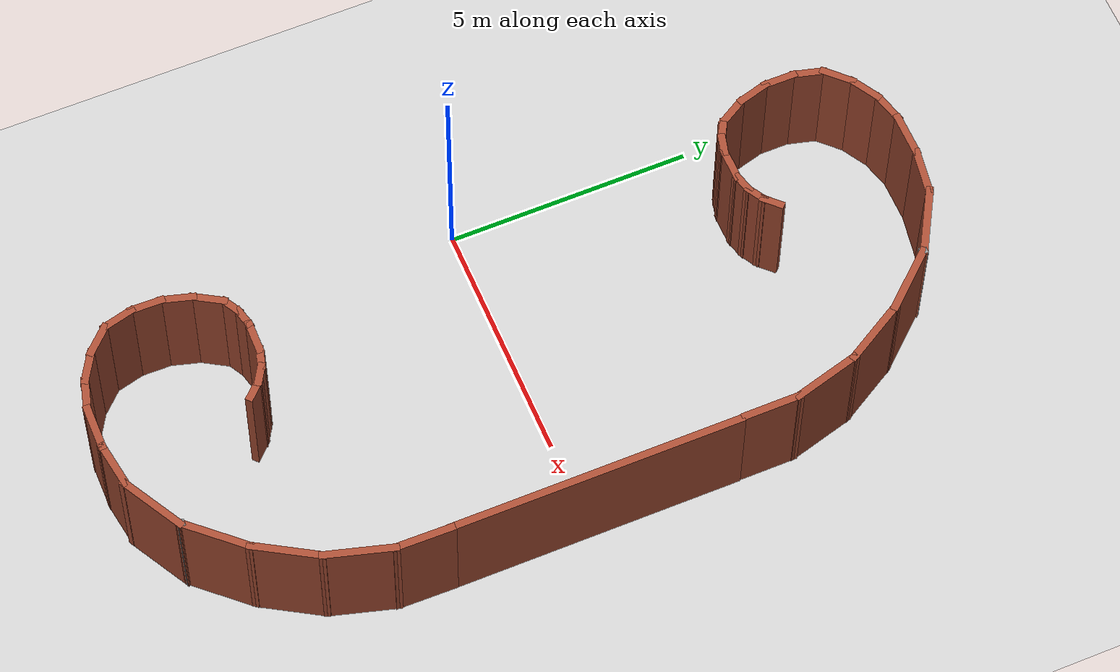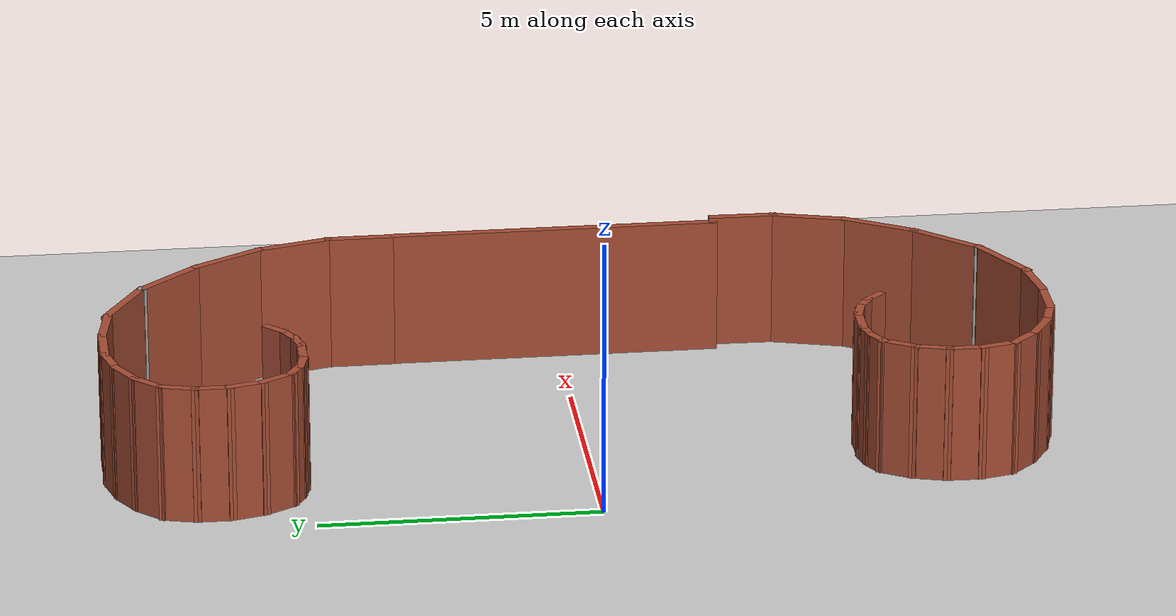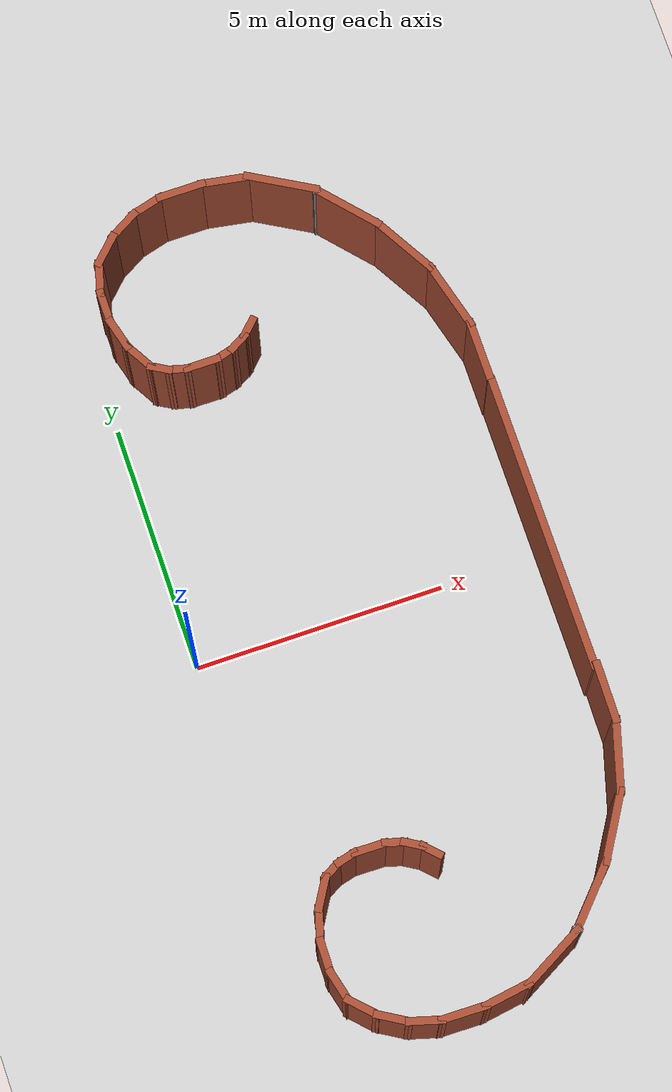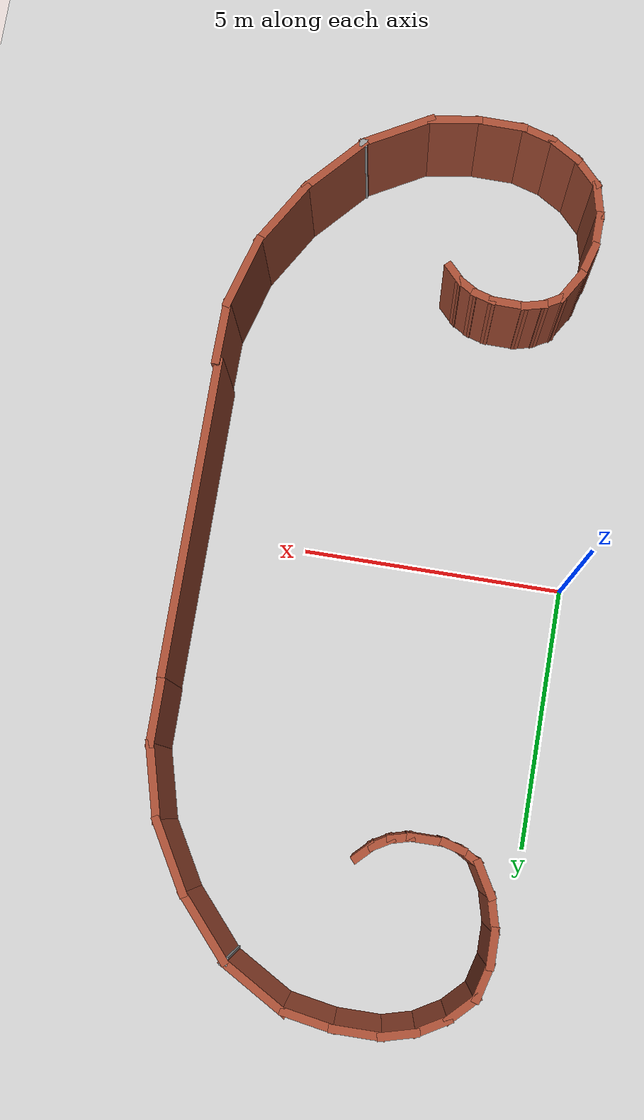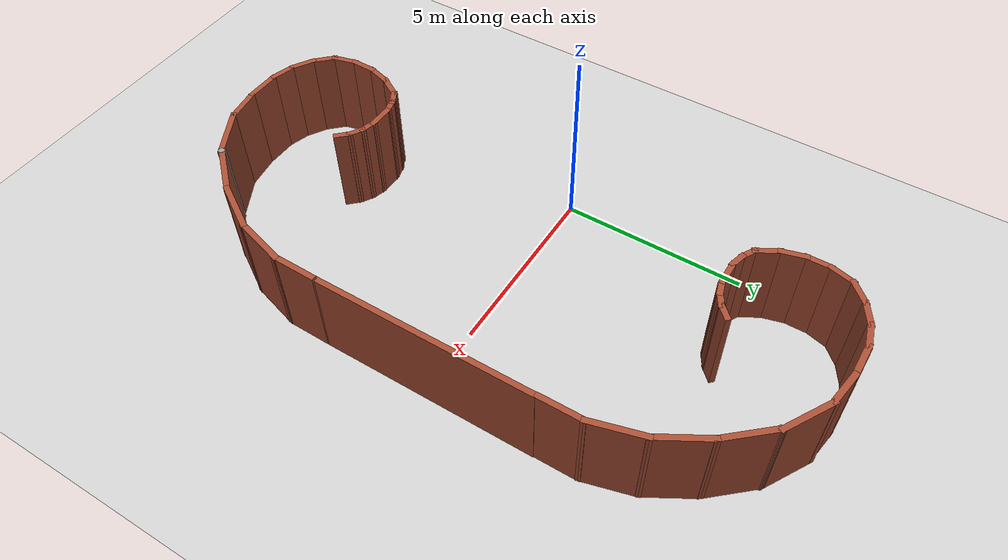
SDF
<sdf version="1.6">
 <world name="default">
  <light name="sun" type="directional">
   <pose>0 0 10 0 -0 0</pose>
   <diffuse>0.8 0.8 0.8 1</diffuse>
   <specular>0.2 0.2 0.2 1</specular>
   <attenuation>
    <range>1000</range>
    <constant>0.9</constant>
    <linear>0.01</linear>
    <quadratic>0.001</quadratic>
   </attenuation>
   <direction>-0.5 0.1 -0.9</direction>
  </light>
  <model name="ground_plane">
   <static>1</static>
   <link name="link">
    <collision name="collision">
     <geometry><plane><normal>0 0 1</normal><size>100 100</size></plane></geometry>
     <surface><friction><ode><mu>100</mu><mu2>50</mu2></ode></friction></surface>
    </collision>
    <visual name="visual">
     <cast_shadows>0</cast_shadows>
     <geometry><plane><normal>0 0 1</normal><size>100 100</size></plane></geometry>
     <material>
      <script><uri>file://media/materials/scripts/gazebo.material</uri><name>Gazebo/Grey</name></script>
     </material>
    </visual>
   </link>
  </model>
  <gravity>0 0 -9.8</gravity>
  <magnetic_field>6e-06 2.3e-05 -4.2e-05</magnetic_field>
  <atmosphere type="adiabatic"/>
  <physics name="default_physics" default="0" type="ode">
   <max_step_size>0.001</max_step_size>
   <real_time_factor>1</real_time_factor>
   <real_time_update_rate>1000</real_time_update_rate>
  </physics>
  <scene><ambient>0.4 0.4 0.4 1</ambient><background>0.7 0.7 0.7 1</background><shadows>1</shadows></scene>
  <audio><device>default</device></audio>
  <spherical_coordinates>
   <surface_model>EARTH_WGS84</surface_model>
   <latitude_deg>0</latitude_deg>
   <longitude_deg>0</longitude_deg>
   <elevation>0</elevation>
   <heading_deg>0</heading_deg>
  </spherical_coordinates>
  <model name="half_c_severe">
   <pose>3.72475 5.80753 0 0 -0 1.57386</pose>
   <link name="Wall_10">
    <collision name="Wall_10_Collision">
     <geometry><box><size>0.75 0.15 2.5</size></box></geometry>
     <pose>0 0 1.25 0 -0 0</pose>
    </collision>
    <visual name="Wall_10_Visual">
     <pose>0 0 1.25 0 -0 0</pose>
     <geometry><box><size>0.75 0.15 2.5</size></box></geometry>
     <material>
      <script><uri>file://media/materials/scripts/gazebo.material</uri><name>Gazebo/Bricks</name></script>
      <ambient>1 1 1 1</ambient>
     </material>
     <meta><layer>0</layer></meta>
    </visual>
    <pose>2.62529 1.86 0 0 -0 1.8326</pose>
   </link>
   <link name="Wall_11">
    <collision name="Wall_11_Collision">
     <geometry><box><size>0.75 0.15 2.5</size></box></geometry>
     <pose>0 0 1.25 0 -0 0</pose>
    </collision>
    <visual name="Wall_11_Visual">
     <pose>0 0 1.25 0 -0 0</pose>
     <geometry><box><size>0.75 0.15 2.5</size></box></geometry>
     <material>
      <script><uri>file://media/materials/scripts/gazebo.material</uri><name>Gazebo/Bricks</name></script>
      <ambient>1 1 1 1</ambient>
     </material>
     <meta><layer>0</layer></meta>
    </visual>
    <pose>2.39764 2.40959 0 0 -0 2.0944</pose>
   </link>
   <link name="Wall_12">
    <collision name="Wall_12_Collision">
     <geometry><box><size>0.75 0.15 2.5</size></box></geometry>
     <pose>0 0 1.25 0 -0 0</pose>
    </collision>
    <visual name="Wall_12_Visual">
     <pose>0 0 1.25 0 -0 0</pose>
     <geometry><box><size>0.75 0.15 2.5</size></box></geometry>
     <material>
      <script><uri>file://media/materials/scripts/gazebo.material</uri><name>Gazebo/Bricks</name></script>
      <ambient>1 1 1 1</ambient>
     </material>
     <meta><layer>0</layer></meta>
    </visual>
    <pose>2.03551 2.88152 0 0 -0 2.35619</pose>
   </link>
   <link name="Wall_13">
    <collision name="Wall_13_Collision">
     <geometry><box><size>0.75 0.15 2.5</size></box></geometry>
     <pose>0 0 1.25 0 -0 0</pose>
    </collision>
    <visual name="Wall_13_Visual">
     <pose>0 0 1.25 0 -0 0</pose>
     <geometry><box><size>0.75 0.15 2.5</size></box></geometry>
     <material>
      <script><uri>file://media/materials/scripts/gazebo.material</uri><name>Gazebo/Bricks</name></script>
      <ambient>1 1 1 1</ambient>
     </material>
     <meta><layer>0</layer></meta>
    </visual>
    <pose>1.5336 3.1713 0 0 -0 2.87979</pose>
   </link>
   <link name="Wall_14">
    <collision name="Wall_14_Collision">
     <geometry><box><size>0.75 0.15 2.5</size></box></geometry>
     <pose>0 0 1.25 0 -0 0</pose>
    </collision>
    <visual name="Wall_14_Visual">
     <pose>0 0 1.25 0 -0 0</pose>
     <geometry><box><size>0.75 0.15 2.5</size></box></geometry>
     <material>
      <script><uri>file://media/materials/scripts/gazebo.material</uri><name>Gazebo/Bricks</name></script>
      <ambient>1 1 1 1</ambient>
     </material>
     <meta><layer>0</layer></meta>
    </visual>
    <pose>0.943823 3.24895 0 0 -0 3.14159</pose>
   </link>
   <link name="Wall_15">
    <collision name="Wall_15_Collision">
     <geometry><box><size>0.75 0.15 2.5</size></box></geometry>
     <pose>0 0 1.25 0 -0 0</pose>
    </collision>
    <visual name="Wall_15_Visual">
     <pose>0 0 1.25 0 -0 0</pose>
     <geometry><box><size>0.75 0.15 2.5</size></box></geometry>
     <material>
      <script><uri>file://media/materials/scripts/gazebo.material</uri><name>Gazebo/Bricks</name></script>
      <ambient>1 1 1 1</ambient>
     </material>
     <meta><layer>0</layer></meta>
    </visual>
    <pose>0.354046 3.1713 0 0 -0 -2.87979</pose>
   </link>
   <link name="Wall_16">
    <collision name="Wall_16_Collision">
     <geometry><box><size>0.75 0.15 2.5</size></box></geometry>
     <pose>0 0 1.25 0 -0 0</pose>
    </collision>
    <visual name="Wall_16_Visual">
     <pose>0 0 1.25 0 -0 0</pose>
     <geometry><box><size>0.75 0.15 2.5</size></box></geometry>
     <material>
      <script><uri>file://media/materials/scripts/gazebo.material</uri><name>Gazebo/Bricks</name></script>
      <ambient>1 1 1 1</ambient>
     </material>
     <meta><layer>0</layer></meta>
    </visual>
    <pose>-0.19554 2.94366 0 0 -0 -2.61799</pose>
   </link>
   <link name="Wall_17">
    <collision name="Wall_17_Collision">
     <geometry><box><size>0.5 0.15 2.5</size></box></geometry>
     <pose>0 0 1.25 0 -0 0</pose>
    </collision>
    <visual name="Wall_17_Visual">
     <pose>0 0 1.25 0 -0 0</pose>
     <geometry><box><size>0.5 0.15 2.5</size></box></geometry>
     <material>
      <script><uri>file://media/materials/scripts/gazebo.material</uri><name>Gazebo/Bricks</name></script>
      <ambient>1 1 1 1</ambient>
     </material>
     <meta><layer>0</layer></meta>
    </visual>
    <pose>-0.542847 2.6421 0 0 -0 -2.0944</pose>
   </link>
   <link name="Wall_18">
    <collision name="Wall_18_Collision">
     <geometry><box><size>0.5 0.15 2.5</size></box></geometry>
     <pose>0 0 1.25 0 -0 0</pose>
    </collision>
    <visual name="Wall_18_Visual">
     <pose>0 0 1.25 0 -0 0</pose>
     <geometry><box><size>0.5 0.15 2.5</size></box></geometry>
     <material>
      <script><uri>file://media/materials/scripts/gazebo.material</uri><name>Gazebo/Bricks</name></script>
      <ambient>1 1 1 1</ambient>
     </material>
     <meta><layer>0</layer></meta>
    </visual>
    <pose>-0.675641 2.32151 0 0 -0 -1.8326</pose>
   </link>
   <link name="Wall_19">
    <collision name="Wall_19_Collision">
     <geometry><box><size>0.75 0.15 2.5</size></box></geometry>
     <pose>0 0 1.25 0 -0 0</pose>
    </collision>
    <visual name="Wall_19_Visual">
     <pose>0 0 1.25 0 -0 0</pose>
     <geometry><box><size>0.75 0.15 2.5</size></box></geometry>
     <material>
      <script><uri>file://media/materials/scripts/gazebo.material</uri><name>Gazebo/Bricks</name></script>
      <ambient>1 1 1 1</ambient>
     </material>
     <meta><layer>0</layer></meta>
    </visual>
    <pose>-0.720934 1.85248 0 0 -0 -1.5708</pose>
   </link>
   <link name="Wall_2">
    <collision name="Wall_2_Collision">
     <geometry><box><size>1.25 0.15 2.5</size></box></geometry>
     <pose>0 0 1.25 0 -0 0</pose>
    </collision>
    <visual name="Wall_2_Visual">
     <pose>0 0 1.25 0 -0 0</pose>
     <geometry><box><size>1.25 0.15 2.5</size></box></geometry>
     <material>
      <script><uri>file://media/materials/scripts/gazebo.material</uri><name>Gazebo/Bricks</name></script>
      <ambient>1 1 1 1</ambient>
     </material>
     <meta><layer>0</layer></meta>
    </visual>
    <pose>-2.16979 -3.24895 0 0 -0 0</pose>
   </link>
   <link name="Wall_20">
    <collision name="Wall_20_Collision">
     <geometry><box><size>0.5 0.15 2.5</size></box></geometry>
     <pose>0 0 1.25 0 -0 0</pose>
    </collision>
    <visual name="Wall_20_Visual">
     <pose>0 0 1.25 0 -0 0</pose>
     <geometry><box><size>0.5 0.15 2.5</size></box></geometry>
     <material>
      <script><uri>file://media/materials/scripts/gazebo.material</uri><name>Gazebo/Bricks</name></script>
      <ambient>1 1 1 1</ambient>
     </material>
     <meta><layer>0</layer></meta>
    </visual>
    <pose>-0.675641 1.38344 0 0 -0 -1.309</pose>
   </link>
   <link name="Wall_21">
    <collision name="Wall_21_Collision">
     <geometry><box><size>0.5 0.15 2.5</size></box></geometry>
     <pose>0 0 1.25 0 -0 0</pose>
    </collision>
    <visual name="Wall_21_Visual">
     <pose>0 0 1.25 0 -0 0</pose>
     <geometry><box><size>0.5 0.15 2.5</size></box></geometry>
     <material>
      <script><uri>file://media/materials/scripts/gazebo.material</uri><name>Gazebo/Bricks</name></script>
      <ambient>1 1 1 1</ambient>
     </material>
     <meta><layer>0</layer></meta>
    </visual>
    <pose>-0.542847 1.06285 0 0 -0 -1.0472</pose>
   </link>
   <link name="Wall_22">
    <collision name="Wall_22_Collision">
     <geometry><box><size>0.5 0.15 2.5</size></box></geometry>
     <pose>0 0 1.25 0 -0 0</pose>
    </collision>
    <visual name="Wall_22_Visual">
     <pose>0 0 1.25 0 -0 0</pose>
     <geometry><box><size>0.5 0.15 2.5</size></box></geometry>
     <material>
      <script><uri>file://media/materials/scripts/gazebo.material</uri><name>Gazebo/Bricks</name></script>
      <ambient>1 1 1 1</ambient>
     </material>
     <meta><layer>0</layer></meta>
    </visual>
    <pose>-0.331604 0.787548 0 0 -0 -0.785398</pose>
   </link>
   <link name="Wall_3">
    <collision name="Wall_3_Collision">
     <geometry><box><size>1.5 0.15 2.5</size></box></geometry>
     <pose>0 0 1.25 0 -0 0</pose>
    </collision>
    <visual name="Wall_3_Visual">
     <pose>0 0 1.25 0 -0 0</pose>
     <geometry><box><size>1.5 0.15 2.5</size></box></geometry>
     <material>
      <script><uri>file://media/materials/scripts/gazebo.material</uri><name>Gazebo/Bricks</name></script>
      <ambient>1 1 1 1</ambient>
     </material>
     <meta><layer>0</layer></meta>
    </visual>
    <pose>-0.96779 -3.07425 0 0 -0 0.261799</pose>
   </link>
   <link name="Wall_4">
    <collision name="Wall_4_Collision">
     <geometry><box><size>1.5 0.15 2.5</size></box></geometry>
     <pose>0 0 1.25 0 -0 0</pose>
    </collision>
    <visual name="Wall_4_Visual">
     <pose>0 0 1.25 0 -0 0</pose>
     <geometry><box><size>1.5 0.15 2.5</size></box></geometry>
     <material>
      <script><uri>file://media/materials/scripts/gazebo.material</uri><name>Gazebo/Bricks</name></script>
      <ambient>1 1 1 1</ambient>
     </material>
     <meta><layer>0</layer></meta>
    </visual>
    <pose>0.268777 -2.56204 0 0 -0 0.523599</pose>
   </link>
   <link name="Wall_5">
    <collision name="Wall_5_Collision">
     <geometry><box><size>1.51511 0.15 2.5</size></box></geometry>
     <pose>0 0 1.25 0 -0 0</pose>
    </collision>
    <visual name="Wall_5_Visual">
     <pose>0 0 1.25 0 -0 0</pose>
     <geometry><box><size>1.51511 0.15 2.5</size></box></geometry>
     <material>
      <script><uri>file://media/materials/scripts/gazebo.material</uri><name>Gazebo/Bricks</name></script>
      <ambient>1 1 1 1</ambient>
     </material>
     <meta><layer>0</layer></meta>
    </visual>
    <pose>1.36562 -1.77348 0 0 -0 0.721939</pose>
   </link>
   <link name="Wall_6">
    <collision name="Wall_6_Collision">
     <geometry><box><size>0.15 0.15 2.5</size></box></geometry>
     <pose>0 0 1.25 0 -0 0</pose>
    </collision>
    <visual name="Wall_6_Visual">
     <pose>0 0 1.25 0 -0 0</pose>
     <geometry><box><size>0.15 0.15 2.5</size></box></geometry>
     <material>
      <script><uri>file://media/materials/scripts/gazebo.material</uri><name>Gazebo/Grey</name></script>
      <ambient>1 1 1 1</ambient>
     </material>
     <meta><layer>0</layer></meta>
    </visual>
    <pose>1.8779 -1.32242 0 0 -0 0</pose>
   </link>
   <link name="Wall_7">
    <collision name="Wall_7_Collision">
     <geometry><box><size>1.5 0.15 2.5</size></box></geometry>
     <pose>0 0 1.25 0 -0 0</pose>
    </collision>
    <visual name="Wall_7_Visual">
     <pose>0 0 1.25 0 -0 0</pose>
     <geometry><box><size>1.5 0.15 2.5</size></box></geometry>
     <material>
      <script><uri>file://media/materials/scripts/gazebo.material</uri><name>Gazebo/Bricks</name></script>
      <ambient>1 1 1 1</ambient>
     </material>
     <meta><layer>0</layer></meta>
    </visual>
    <pose>2.23289 -0.737852 0 0 -0 1.0472</pose>
   </link>
   <link name="Wall_8">
    <collision name="Wall_8_Collision">
     <geometry><box><size>1.0363 0.15 2.5</size></box></geometry>
     <pose>0 0 1.25 0 -0 0</pose>
    </collision>
    <visual name="Wall_8_Visual">
     <pose>0 0 1.25 0 -0 0</pose>
     <geometry><box><size>1.0363 0.15 2.5</size></box></geometry>
     <material>
      <script><uri>file://media/materials/scripts/gazebo.material</uri><name>Gazebo/Bricks</name></script>
      <ambient>1 1 1 1</ambient>
     </material>
     <meta><layer>0</layer></meta>
    </visual>
    <pose>2.62792 0.283469 0 0 -0 1.40069</pose>
   </link>
   <link name="Wall_9">
    <collision name="Wall_9_Collision">
     <geometry><box><size>1 0.15 2.5</size></box></geometry>
     <pose>0 0 1.25 0 -0 0</pose>
    </collision>
    <visual name="Wall_9_Visual">
     <pose>0 0 1.25 0 -0 0</pose>
     <geometry><box><size>1 0.15 2.5</size></box></geometry>
     <material>
      <script><uri>file://media/materials/scripts/gazebo.material</uri><name>Gazebo/Bricks</name></script>
      <ambient>1 1 1 1</ambient>
     </material>
     <meta><layer>0</layer></meta>
    </visual>
    <pose>2.70293 1.14522 0 0 -0 1.5708</pose>
   </link>
   <static>1</static>
  </model>
  <model name="half_c_severe_clone">
   <pose>3.7434 -5.5229 2.58183 3.13976 -3e-05 -1.58682</pose>
   <link name="Wall_10">
    <collision name="Wall_10_Collision">
     <geometry><box><size>0.75 0.15 2.5</size></box></geometry>
     <pose>0 0 1.25 0 -0 0</pose>
    </collision>
    <visual name="Wall_10_Visual">
     <pose>0 0 1.25 0 -0 0</pose>
     <geometry><box><size>0.75 0.15 2.5</size></box></geometry>
     <material>
      <script><uri>file://media/materials/scripts/gazebo.material</uri><name>Gazebo/Bricks</name></script>
      <ambient>1 1 1 1</ambient>
     </material>
     <meta><layer>0</layer></meta>
    </visual>
    <pose>2.62529 1.86 0 0 -0 1.8326</pose>
   </link>
   <link name="Wall_11">
    <collision name="Wall_11_Collision">
     <geometry><box><size>0.75 0.15 2.5</size></box></geometry>
     <pose>0 0 1.25 0 -0 0</pose>
    </collision>
    <visual name="Wall_11_Visual">
     <pose>0 0 1.25 0 -0 0</pose>
     <geometry><box><size>0.75 0.15 2.5</size></box></geometry>
     <material>
      <script><uri>file://media/materials/scripts/gazebo.material</uri><name>Gazebo/Bricks</name></script>
      <ambient>1 1 1 1</ambient>
     </material>
     <meta><layer>0</layer></meta>
    </visual>
    <pose>2.39764 2.40959 0 0 -0 2.0944</pose>
   </link>
   <link name="Wall_12">
    <collision name="Wall_12_Collision">
     <geometry><box><size>0.75 0.15 2.5</size></box></geometry>
     <pose>0 0 1.25 0 -0 0</pose>
    </collision>
    <visual name="Wall_12_Visual">
     <pose>0 0 1.25 0 -0 0</pose>
     <geometry><box><size>0.75 0.15 2.5</size></box></geometry>
     <material>
      <script><uri>file://media/materials/scripts/gazebo.material</uri><name>Gazebo/Bricks</name></script>
      <ambient>1 1 1 1</ambient>
     </material>
     <meta><layer>0</layer></meta>
    </visual>
    <pose>2.03551 2.88152 0 0 -0 2.35619</pose>
   </link>
   <link name="Wall_13">
    <collision name="Wall_13_Collision">
     <geometry><box><size>0.75 0.15 2.5</size></box></geometry>
     <pose>0 0 1.25 0 -0 0</pose>
    </collision>
    <visual name="Wall_13_Visual">
     <pose>0 0 1.25 0 -0 0</pose>
     <geometry><box><size>0.75 0.15 2.5</size></box></geometry>
     <material>
      <script><uri>file://media/materials/scripts/gazebo.material</uri><name>Gazebo/Bricks</name></script>
      <ambient>1 1 1 1</ambient>
     </material>
     <meta><layer>0</layer></meta>
    </visual>
    <pose>1.5336 3.1713 0 0 -0 2.87979</pose>
   </link>
   <link name="Wall_14">
    <collision name="Wall_14_Collision">
     <geometry><box><size>0.75 0.15 2.5</size></box></geometry>
     <pose>0 0 1.25 0 -0 0</pose>
    </collision>
    <visual name="Wall_14_Visual">
     <pose>0 0 1.25 0 -0 0</pose>
     <geometry><box><size>0.75 0.15 2.5</size></box></geometry>
     <material>
      <script><uri>file://media/materials/scripts/gazebo.material</uri><name>Gazebo/Bricks</name></script>
      <ambient>1 1 1 1</ambient>
     </material>
     <meta><layer>0</layer></meta>
    </visual>
    <pose>0.943823 3.24895 0 0 -0 3.14159</pose>
   </link>
   <link name="Wall_15">
    <collision name="Wall_15_Collision">
     <geometry><box><size>0.75 0.15 2.5</size></box></geometry>
     <pose>0 0 1.25 0 -0 0</pose>
    </collision>
    <visual name="Wall_15_Visual">
     <pose>0 0 1.25 0 -0 0</pose>
     <geometry><box><size>0.75 0.15 2.5</size></box></geometry>
     <material>
      <script><uri>file://media/materials/scripts/gazebo.material</uri><name>Gazebo/Bricks</name></script>
      <ambient>1 1 1 1</ambient>
     </material>
     <meta><layer>0</layer></meta>
    </visual>
    <pose>0.354046 3.1713 0 0 -0 -2.87979</pose>
   </link>
   <link name="Wall_16">
    <collision name="Wall_16_Collision">
     <geometry><box><size>0.75 0.15 2.5</size></box></geometry>
     <pose>0 0 1.25 0 -0 0</pose>
    </collision>
    <visual name="Wall_16_Visual">
     <pose>0 0 1.25 0 -0 0</pose>
     <geometry><box><size>0.75 0.15 2.5</size></box></geometry>
     <material>
      <script><uri>file://media/materials/scripts/gazebo.material</uri><name>Gazebo/Bricks</name></script>
      <ambient>1 1 1 1</ambient>
     </material>
     <meta><layer>0</layer></meta>
    </visual>
    <pose>-0.19554 2.94366 0 0 -0 -2.61799</pose>
   </link>
   <link name="Wall_17">
    <collision name="Wall_17_Collision">
     <geometry><box><size>0.5 0.15 2.5</size></box></geometry>
     <pose>0 0 1.25 0 -0 0</pose>
    </collision>
    <visual name="Wall_17_Visual">
     <pose>0 0 1.25 0 -0 0</pose>
     <geometry><box><size>0.5 0.15 2.5</size></box></geometry>
     <material>
      <script><uri>file://media/materials/scripts/gazebo.material</uri><name>Gazebo/Bricks</name></script>
      <ambient>1 1 1 1</ambient>
     </material>
     <meta><layer>0</layer></meta>
    </visual>
    <pose>-0.542847 2.6421 0 0 -0 -2.0944</pose>
   </link>
   <link name="Wall_18">
    <collision name="Wall_18_Collision">
     <geometry><box><size>0.5 0.15 2.5</size></box></geometry>
     <pose>0 0 1.25 0 -0 0</pose>
    </collision>
    <visual name="Wall_18_Visual">
     <pose>0 0 1.25 0 -0 0</pose>
     <geometry><box><size>0.5 0.15 2.5</size></box></geometry>
     <material>
      <script><uri>file://media/materials/scripts/gazebo.material</uri><name>Gazebo/Bricks</name></script>
      <ambient>1 1 1 1</ambient>
     </material>
     <meta><layer>0</layer></meta>
    </visual>
    <pose>-0.675641 2.32151 0 0 -0 -1.8326</pose>
   </link>
   <link name="Wall_19">
    <collision name="Wall_19_Collision">
     <geometry><box><size>0.75 0.15 2.5</size></box></geometry>
     <pose>0 0 1.25 0 -0 0</pose>
    </collision>
    <visual name="Wall_19_Visual">
     <pose>0 0 1.25 0 -0 0</pose>
     <geometry><box><size>0.75 0.15 2.5</size></box></geometry>
     <material>
      <script><uri>file://media/materials/scripts/gazebo.material</uri><name>Gazebo/Bricks</name></script>
      <ambient>1 1 1 1</ambient>
     </material>
     <meta><layer>0</layer></meta>
    </visual>
    <pose>-0.720934 1.85248 0 0 -0 -1.5708</pose>
   </link>
   <link name="Wall_2">
    <collision name="Wall_2_Collision">
     <geometry><box><size>1.25 0.15 2.5</size></box></geometry>
     <pose>0 0 1.25 0 -0 0</pose>
    </collision>
    <visual name="Wall_2_Visual">
     <pose>0 0 1.25 0 -0 0</pose>
     <geometry><box><size>1.25 0.15 2.5</size></box></geometry>
     <material>
      <script><uri>file://media/materials/scripts/gazebo.material</uri><name>Gazebo/Bricks</name></script>
      <ambient>1 1 1 1</ambient>
     </material>
     <meta><layer>0</layer></meta>
    </visual>
    <pose>-2.16979 -3.24895 0 0 -0 0</pose>
   </link>
   <link name="Wall_20">
    <collision name="Wall_20_Collision">
     <geometry><box><size>0.5 0.15 2.5</size></box></geometry>
     <pose>0 0 1.25 0 -0 0</pose>
    </collision>
    <visual name="Wall_20_Visual">
     <pose>0 0 1.25 0 -0 0</pose>
     <geometry><box><size>0.5 0.15 2.5</size></box></geometry>
     <material>
      <script><uri>file://media/materials/scripts/gazebo.material</uri><name>Gazebo/Bricks</name></script>
      <ambient>1 1 1 1</ambient>
     </material>
     <meta><layer>0</layer></meta>
    </visual>
    <pose>-0.675641 1.38344 0 0 -0 -1.309</pose>
   </link>
   <link name="Wall_21">
    <collision name="Wall_21_Collision">
     <geometry><box><size>0.5 0.15 2.5</size></box></geometry>
     <pose>0 0 1.25 0 -0 0</pose>
    </collision>
    <visual name="Wall_21_Visual">
     <pose>0 0 1.25 0 -0 0</pose>
     <geometry><box><size>0.5 0.15 2.5</size></box></geometry>
     <material>
      <script><uri>file://media/materials/scripts/gazebo.material</uri><name>Gazebo/Bricks</name></script>
      <ambient>1 1 1 1</ambient>
     </material>
     <meta><layer>0</layer></meta>
    </visual>
    <pose>-0.542847 1.06285 0 0 -0 -1.0472</pose>
   </link>
   <link name="Wall_22">
    <collision name="Wall_22_Collision">
     <geometry><box><size>0.5 0.15 2.5</size></box></geometry>
     <pose>0 0 1.25 0 -0 0</pose>
    </collision>
    <visual name="Wall_22_Visual">
     <pose>0 0 1.25 0 -0 0</pose>
     <geometry><box><size>0.5 0.15 2.5</size></box></geometry>
     <material>
      <script><uri>file://media/materials/scripts/gazebo.material</uri><name>Gazebo/Bricks</name></script>
      <ambient>1 1 1 1</ambient>
     </material>
     <meta><layer>0</layer></meta>
    </visual>
    <pose>-0.331604 0.787548 0 0 -0 -0.785398</pose>
   </link>
   <link name="Wall_3">
    <collision name="Wall_3_Collision">
     <geometry><box><size>1.5 0.15 2.5</size></box></geometry>
     <pose>0 0 1.25 0 -0 0</pose>
    </collision>
    <visual name="Wall_3_Visual">
     <pose>0 0 1.25 0 -0 0</pose>
     <geometry><box><size>1.5 0.15 2.5</size></box></geometry>
     <material>
      <script><uri>file://media/materials/scripts/gazebo.material</uri><name>Gazebo/Bricks</name></script>
      <ambient>1 1 1 1</ambient>
     </material>
     <meta><layer>0</layer></meta>
    </visual>
    <pose>-0.96779 -3.07425 0 0 -0 0.261799</pose>
   </link>
   <link name="Wall_4">
    <collision name="Wall_4_Collision">
     <geometry><box><size>1.5 0.15 2.5</size></box></geometry>
     <pose>0 0 1.25 0 -0 0</pose>
    </collision>
    <visual name="Wall_4_Visual">
     <pose>0 0 1.25 0 -0 0</pose>
     <geometry><box><size>1.5 0.15 2.5</size></box></geometry>
     <material>
      <script><uri>file://media/materials/scripts/gazebo.material</uri><name>Gazebo/Bricks</name></script>
      <ambient>1 1 1 1</ambient>
     </material>
     <meta><layer>0</layer></meta>
    </visual>
    <pose>0.268777 -2.56204 0 0 -0 0.523599</pose>
   </link>
   <link name="Wall_5">
    <collision name="Wall_5_Collision">
     <geometry><box><size>1.51511 0.15 2.5</size></box></geometry>
     <pose>0 0 1.25 0 -0 0</pose>
    </collision>
    <visual name="Wall_5_Visual">
     <pose>0 0 1.25 0 -0 0</pose>
     <geometry><box><size>1.51511 0.15 2.5</size></box></geometry>
     <material>
      <script><uri>file://media/materials/scripts/gazebo.material</uri><name>Gazebo/Bricks</name></script>
      <ambient>1 1 1 1</ambient>
     </material>
     <meta><layer>0</layer></meta>
    </visual>
    <pose>1.36562 -1.77348 0 0 -0 0.721939</pose>
   </link>
   <link name="Wall_6">
    <collision name="Wall_6_Collision">
     <geometry><box><size>0.15 0.15 2.5</size></box></geometry>
     <pose>0 0 1.25 0 -0 0</pose>
    </collision>
    <visual name="Wall_6_Visual">
     <pose>0 0 1.25 0 -0 0</pose>
     <geometry><box><size>0.15 0.15 2.5</size></box></geometry>
     <material>
      <script><uri>file://media/materials/scripts/gazebo.material</uri><name>Gazebo/Grey</name></script>
      <ambient>1 1 1 1</ambient>
     </material>
     <meta><layer>0</layer></meta>
    </visual>
    <pose>1.8779 -1.32242 0 0 -0 0</pose>
   </link>
   <link name="Wall_7">
    <collision name="Wall_7_Collision">
     <geometry><box><size>1.5 0.15 2.5</size></box></geometry>
     <pose>0 0 1.25 0 -0 0</pose>
    </collision>
    <visual name="Wall_7_Visual">
     <pose>0 0 1.25 0 -0 0</pose>
     <geometry><box><size>1.5 0.15 2.5</size></box></geometry>
     <material>
      <script><uri>file://media/materials/scripts/gazebo.material</uri><name>Gazebo/Bricks</name></script>
      <ambient>1 1 1 1</ambient>
     </material>
     <meta><layer>0</layer></meta>
    </visual>
    <pose>2.23289 -0.737852 0 0 -0 1.0472</pose>
   </link>
   <link name="Wall_8">
    <collision name="Wall_8_Collision">
     <geometry><box><size>1.0363 0.15 2.5</size></box></geometry>
     <pose>0 0 1.25 0 -0 0</pose>
    </collision>
    <visual name="Wall_8_Visual">
     <pose>0 0 1.25 0 -0 0</pose>
     <geometry><box><size>1.0363 0.15 2.5</size></box></geometry>
     <material>
      <script><uri>file://media/materials/scripts/gazebo.material</uri><name>Gazebo/Bricks</name></script>
      <ambient>1 1 1 1</ambient>
     </material>
     <meta><layer>0</layer></meta>
    </visual>
    <pose>2.62792 0.283469 0 0 -0 1.40069</pose>
   </link>
   <link name="Wall_9">
    <collision name="Wall_9_Collision">
     <geometry><box><size>1 0.15 2.5</size></box></geometry>
     <pose>0 0 1.25 0 -0 0</pose>
    </collision>
    <visual name="Wall_9_Visual">
     <pose>0 0 1.25 0 -0 0</pose>
     <geometry><box><size>1 0.15 2.5</size></box></geometry>
     <material>
      <script><uri>file://media/materials/scripts/gazebo.material</uri><name>Gazebo/Bricks</name></script>
      <ambient>1 1 1 1</ambient>
     </material>
     <meta><layer>0</layer></meta>
    </visual>
    <pose>2.70293 1.14522 0 0 -0 1.5708</pose>
   </link>
   <static>1</static>
  </model>
  <model name="6mWall">
   <pose>6.99559 0.068896 0 0 -0 0</pose>
   <link name="Wall_3">
    <collision name="Wall_3_Collision">
     <geometry><box><size>6 0.15 2.5</size></box></geometry>
     <pose>0 0 1.25 0 -0 0</pose>
    </collision>
    <visual name="Wall_3_Visual">
     <pose>0 0 1.25 0 -0 0</pose>
     <geometry><box><size>6 0.15 2.5</size></box></geometry>
     <material>
      <script><uri>file://media/materials/scripts/gazebo.material</uri><name>Gazebo/Bricks</name></script>
      <ambient>1 1 1 1</ambient>
     </material>
     <meta><layer>0</layer></meta>
    </visual>
    <pose>0 -0 0 0 -0 1.5708</pose>
   </link>
   <static>1</static>
  </model>
 </world>
</sdf>
